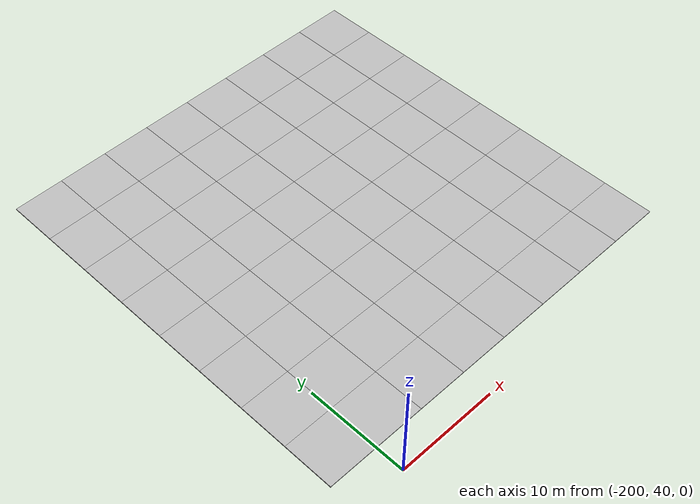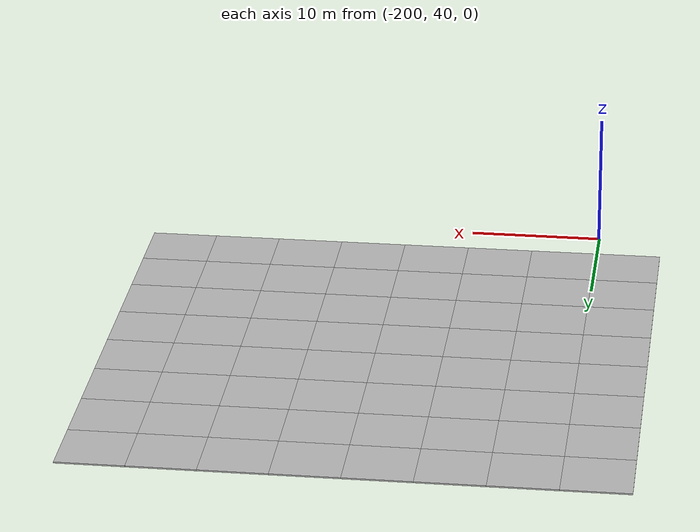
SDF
<sdf version="1.7">
 <world name="default">
  <model name="mud_plane_40x40_24">
   <model name="mud_plane_20x20">
    <model name="mud_plane">
     <static>1</static>
     <link name="link">
      <collision name="collision"><geometry><box><size>10 10 0.1</size></box></geometry></collision>
      <visual name="visual_1">
       <pose>-2.5 2.5 -0.05 0 -0 0</pose>
       <cast_shadows>0</cast_shadows>
       <geometry><box><size>5 5 0.1</size></box></geometry>
       <material>
        <script>
         <uri>model://mud_plane/materials/scripts</uri>
         <uri>model://mud_plane/materials/textures</uri>
         <name>vrc/mud</name>
        </script>
       </material>
      </visual>
      <visual name="visual_2">
       <pose>2.5 2.5 -0.05 0 -0 0</pose>
       <cast_shadows>0</cast_shadows>
       <geometry><box><size>5 5 0.1</size></box></geometry>
       <material>
        <script>
         <uri>model://mud_plane/materials/scripts</uri>
         <uri>model://mud_plane/materials/textures</uri>
         <name>vrc/mud</name>
        </script>
       </material>
      </visual>
      <visual name="visual_3">
       <pose>2.5 -2.5 -0.05 0 -0 0</pose>
       <cast_shadows>0</cast_shadows>
       <geometry><box><size>5 5 0.1</size></box></geometry>
       <material>
        <script>
         <uri>model://mud_plane/materials/scripts</uri>
         <uri>model://mud_plane/materials/textures</uri>
         <name>vrc/mud</name>
        </script>
       </material>
      </visual>
      <visual name="visual_4">
       <pose>-2.5 -2.5 -0.05 0 -0 0</pose>
       <cast_shadows>0</cast_shadows>
       <geometry><box><size>5 5 0.1</size></box></geometry>
       <material>
        <script>
         <uri>model://mud_plane/materials/scripts</uri>
         <uri>model://mud_plane/materials/textures</uri>
         <name>vrc/mud</name>
        </script>
       </material>
      </visual>
     </link>
     <pose>-4.99986 -4.99991 0 0 -0 0</pose>
    </model>
    <model name="mud_plane_0">
     <static>1</static>
     <link name="link">
      <collision name="collision"><geometry><box><size>10 10 0.1</size></box></geometry></collision>
      <visual name="visual_1">
       <pose>-2.5 2.5 -0.05 0 -0 0</pose>
       <cast_shadows>0</cast_shadows>
       <geometry><box><size>5 5 0.1</size></box></geometry>
       <material>
        <script>
         <uri>model://mud_plane/materials/scripts</uri>
         <uri>model://mud_plane/materials/textures</uri>
         <name>vrc/mud</name>
        </script>
       </material>
      </visual>
      <visual name="visual_2">
       <pose>2.5 2.5 -0.05 0 -0 0</pose>
       <cast_shadows>0</cast_shadows>
       <geometry><box><size>5 5 0.1</size></box></geometry>
       <material>
        <script>
         <uri>model://mud_plane/materials/scripts</uri>
         <uri>model://mud_plane/materials/textures</uri>
         <name>vrc/mud</name>
        </script>
       </material>
      </visual>
      <visual name="visual_3">
       <pose>2.5 -2.5 -0.05 0 -0 0</pose>
       <cast_shadows>0</cast_shadows>
       <geometry><box><size>5 5 0.1</size></box></geometry>
       <material>
        <script>
         <uri>model://mud_plane/materials/scripts</uri>
         <uri>model://mud_plane/materials/textures</uri>
         <name>vrc/mud</name>
        </script>
       </material>
      </visual>
      <visual name="visual_4">
       <pose>-2.5 -2.5 -0.05 0 -0 0</pose>
       <cast_shadows>0</cast_shadows>
       <geometry><box><size>5 5 0.1</size></box></geometry>
       <material>
        <script>
         <uri>model://mud_plane/materials/scripts</uri>
         <uri>model://mud_plane/materials/textures</uri>
         <name>vrc/mud</name>
        </script>
       </material>
      </visual>
     </link>
     <pose>-4.99946 4.99954 0 0 -0 0</pose>
    </model>
    <model name="mud_plane_1">
     <static>1</static>
     <link name="link">
      <collision name="collision"><geometry><box><size>10 10 0.1</size></box></geometry></collision>
      <visual name="visual_1">
       <pose>-2.5 2.5 -0.05 0 -0 0</pose>
       <cast_shadows>0</cast_shadows>
       <geometry><box><size>5 5 0.1</size></box></geometry>
       <material>
        <script>
         <uri>model://mud_plane/materials/scripts</uri>
         <uri>model://mud_plane/materials/textures</uri>
         <name>vrc/mud</name>
        </script>
       </material>
      </visual>
      <visual name="visual_2">
       <pose>2.5 2.5 -0.05 0 -0 0</pose>
       <cast_shadows>0</cast_shadows>
       <geometry><box><size>5 5 0.1</size></box></geometry>
       <material>
        <script>
         <uri>model://mud_plane/materials/scripts</uri>
         <uri>model://mud_plane/materials/textures</uri>
         <name>vrc/mud</name>
        </script>
       </material>
      </visual>
      <visual name="visual_3">
       <pose>2.5 -2.5 -0.05 0 -0 0</pose>
       <cast_shadows>0</cast_shadows>
       <geometry><box><size>5 5 0.1</size></box></geometry>
       <material>
        <script>
         <uri>model://mud_plane/materials/scripts</uri>
         <uri>model://mud_plane/materials/textures</uri>
         <name>vrc/mud</name>
        </script>
       </material>
      </visual>
      <visual name="visual_4">
       <pose>-2.5 -2.5 -0.05 0 -0 0</pose>
       <cast_shadows>0</cast_shadows>
       <geometry><box><size>5 5 0.1</size></box></geometry>
       <material>
        <script>
         <uri>model://mud_plane/materials/scripts</uri>
         <uri>model://mud_plane/materials/textures</uri>
         <name>vrc/mud</name>
        </script>
       </material>
      </visual>
     </link>
     <pose>4.99964 -4.99949 0 0 -0 0</pose>
    </model>
    <model name="mud_plane_2">
     <static>1</static>
     <link name="link">
      <collision name="collision"><geometry><box><size>10 10 0.1</size></box></geometry></collision>
      <visual name="visual_1">
       <pose>-2.5 2.5 -0.05 0 -0 0</pose>
       <cast_shadows>0</cast_shadows>
       <geometry><box><size>5 5 0.1</size></box></geometry>
       <material>
        <script>
         <uri>model://mud_plane/materials/scripts</uri>
         <uri>model://mud_plane/materials/textures</uri>
         <name>vrc/mud</name>
        </script>
       </material>
      </visual>
      <visual name="visual_2">
       <pose>2.5 2.5 -0.05 0 -0 0</pose>
       <cast_shadows>0</cast_shadows>
       <geometry><box><size>5 5 0.1</size></box></geometry>
       <material>
        <script>
         <uri>model://mud_plane/materials/scripts</uri>
         <uri>model://mud_plane/materials/textures</uri>
         <name>vrc/mud</name>
        </script>
       </material>
      </visual>
      <visual name="visual_3">
       <pose>2.5 -2.5 -0.05 0 -0 0</pose>
       <cast_shadows>0</cast_shadows>
       <geometry><box><size>5 5 0.1</size></box></geometry>
       <material>
        <script>
         <uri>model://mud_plane/materials/scripts</uri>
         <uri>model://mud_plane/materials/textures</uri>
         <name>vrc/mud</name>
        </script>
       </material>
      </visual>
      <visual name="visual_4">
       <pose>-2.5 -2.5 -0.05 0 -0 0</pose>
       <cast_shadows>0</cast_shadows>
       <geometry><box><size>5 5 0.1</size></box></geometry>
       <material>
        <script>
         <uri>model://mud_plane/materials/scripts</uri>
         <uri>model://mud_plane/materials/textures</uri>
         <name>vrc/mud</name>
        </script>
       </material>
      </visual>
     </link>
     <pose>4.99967 4.99986 0 0 -0 0</pose>
    </model>
    <static>0</static>
    <pose>-9.99895 9.99843 0 0 -0 0</pose>
   </model>
   <model name="mud_plane_20x20_0">
    <model name="mud_plane">
     <static>1</static>
     <link name="link">
      <collision name="collision"><geometry><box><size>10 10 0.1</size></box></geometry></collision>
      <visual name="visual_1">
       <pose>-2.5 2.5 -0.05 0 -0 0</pose>
       <cast_shadows>0</cast_shadows>
       <geometry><box><size>5 5 0.1</size></box></geometry>
       <material>
        <script>
         <uri>model://mud_plane/materials/scripts</uri>
         <uri>model://mud_plane/materials/textures</uri>
         <name>vrc/mud</name>
        </script>
       </material>
      </visual>
      <visual name="visual_2">
       <pose>2.5 2.5 -0.05 0 -0 0</pose>
       <cast_shadows>0</cast_shadows>
       <geometry><box><size>5 5 0.1</size></box></geometry>
       <material>
        <script>
         <uri>model://mud_plane/materials/scripts</uri>
         <uri>model://mud_plane/materials/textures</uri>
         <name>vrc/mud</name>
        </script>
       </material>
      </visual>
      <visual name="visual_3">
       <pose>2.5 -2.5 -0.05 0 -0 0</pose>
       <cast_shadows>0</cast_shadows>
       <geometry><box><size>5 5 0.1</size></box></geometry>
       <material>
        <script>
         <uri>model://mud_plane/materials/scripts</uri>
         <uri>model://mud_plane/materials/textures</uri>
         <name>vrc/mud</name>
        </script>
       </material>
      </visual>
      <visual name="visual_4">
       <pose>-2.5 -2.5 -0.05 0 -0 0</pose>
       <cast_shadows>0</cast_shadows>
       <geometry><box><size>5 5 0.1</size></box></geometry>
       <material>
        <script>
         <uri>model://mud_plane/materials/scripts</uri>
         <uri>model://mud_plane/materials/textures</uri>
         <name>vrc/mud</name>
        </script>
       </material>
      </visual>
     </link>
     <pose>-4.99986 -4.99991 0 0 -0 0</pose>
    </model>
    <model name="mud_plane_0">
     <static>1</static>
     <link name="link">
      <collision name="collision"><geometry><box><size>10 10 0.1</size></box></geometry></collision>
      <visual name="visual_1">
       <pose>-2.5 2.5 -0.05 0 -0 0</pose>
       <cast_shadows>0</cast_shadows>
       <geometry><box><size>5 5 0.1</size></box></geometry>
       <material>
        <script>
         <uri>model://mud_plane/materials/scripts</uri>
         <uri>model://mud_plane/materials/textures</uri>
         <name>vrc/mud</name>
        </script>
       </material>
      </visual>
      <visual name="visual_2">
       <pose>2.5 2.5 -0.05 0 -0 0</pose>
       <cast_shadows>0</cast_shadows>
       <geometry><box><size>5 5 0.1</size></box></geometry>
       <material>
        <script>
         <uri>model://mud_plane/materials/scripts</uri>
         <uri>model://mud_plane/materials/textures</uri>
         <name>vrc/mud</name>
        </script>
       </material>
      </visual>
      <visual name="visual_3">
       <pose>2.5 -2.5 -0.05 0 -0 0</pose>
       <cast_shadows>0</cast_shadows>
       <geometry><box><size>5 5 0.1</size></box></geometry>
       <material>
        <script>
         <uri>model://mud_plane/materials/scripts</uri>
         <uri>model://mud_plane/materials/textures</uri>
         <name>vrc/mud</name>
        </script>
       </material>
      </visual>
      <visual name="visual_4">
       <pose>-2.5 -2.5 -0.05 0 -0 0</pose>
       <cast_shadows>0</cast_shadows>
       <geometry><box><size>5 5 0.1</size></box></geometry>
       <material>
        <script>
         <uri>model://mud_plane/materials/scripts</uri>
         <uri>model://mud_plane/materials/textures</uri>
         <name>vrc/mud</name>
        </script>
       </material>
      </visual>
     </link>
     <pose>-4.99946 4.99954 0 0 -0 0</pose>
    </model>
    <model name="mud_plane_1">
     <static>1</static>
     <link name="link">
      <collision name="collision"><geometry><box><size>10 10 0.1</size></box></geometry></collision>
      <visual name="visual_1">
       <pose>-2.5 2.5 -0.05 0 -0 0</pose>
       <cast_shadows>0</cast_shadows>
       <geometry><box><size>5 5 0.1</size></box></geometry>
       <material>
        <script>
         <uri>model://mud_plane/materials/scripts</uri>
         <uri>model://mud_plane/materials/textures</uri>
         <name>vrc/mud</name>
        </script>
       </material>
      </visual>
      <visual name="visual_2">
       <pose>2.5 2.5 -0.05 0 -0 0</pose>
       <cast_shadows>0</cast_shadows>
       <geometry><box><size>5 5 0.1</size></box></geometry>
       <material>
        <script>
         <uri>model://mud_plane/materials/scripts</uri>
         <uri>model://mud_plane/materials/textures</uri>
         <name>vrc/mud</name>
        </script>
       </material>
      </visual>
      <visual name="visual_3">
       <pose>2.5 -2.5 -0.05 0 -0 0</pose>
       <cast_shadows>0</cast_shadows>
       <geometry><box><size>5 5 0.1</size></box></geometry>
       <material>
        <script>
         <uri>model://mud_plane/materials/scripts</uri>
         <uri>model://mud_plane/materials/textures</uri>
         <name>vrc/mud</name>
        </script>
       </material>
      </visual>
      <visual name="visual_4">
       <pose>-2.5 -2.5 -0.05 0 -0 0</pose>
       <cast_shadows>0</cast_shadows>
       <geometry><box><size>5 5 0.1</size></box></geometry>
       <material>
        <script>
         <uri>model://mud_plane/materials/scripts</uri>
         <uri>model://mud_plane/materials/textures</uri>
         <name>vrc/mud</name>
        </script>
       </material>
      </visual>
     </link>
     <pose>4.99964 -4.99949 0 0 -0 0</pose>
    </model>
    <model name="mud_plane_2">
     <static>1</static>
     <link name="link">
      <collision name="collision"><geometry><box><size>10 10 0.1</size></box></geometry></collision>
      <visual name="visual_1">
       <pose>-2.5 2.5 -0.05 0 -0 0</pose>
       <cast_shadows>0</cast_shadows>
       <geometry><box><size>5 5 0.1</size></box></geometry>
       <material>
        <script>
         <uri>model://mud_plane/materials/scripts</uri>
         <uri>model://mud_plane/materials/textures</uri>
         <name>vrc/mud</name>
        </script>
       </material>
      </visual>
      <visual name="visual_2">
       <pose>2.5 2.5 -0.05 0 -0 0</pose>
       <cast_shadows>0</cast_shadows>
       <geometry><box><size>5 5 0.1</size></box></geometry>
       <material>
        <script>
         <uri>model://mud_plane/materials/scripts</uri>
         <uri>model://mud_plane/materials/textures</uri>
         <name>vrc/mud</name>
        </script>
       </material>
      </visual>
      <visual name="visual_3">
       <pose>2.5 -2.5 -0.05 0 -0 0</pose>
       <cast_shadows>0</cast_shadows>
       <geometry><box><size>5 5 0.1</size></box></geometry>
       <material>
        <script>
         <uri>model://mud_plane/materials/scripts</uri>
         <uri>model://mud_plane/materials/textures</uri>
         <name>vrc/mud</name>
        </script>
       </material>
      </visual>
      <visual name="visual_4">
       <pose>-2.5 -2.5 -0.05 0 -0 0</pose>
       <cast_shadows>0</cast_shadows>
       <geometry><box><size>5 5 0.1</size></box></geometry>
       <material>
        <script>
         <uri>model://mud_plane/materials/scripts</uri>
         <uri>model://mud_plane/materials/textures</uri>
         <name>vrc/mud</name>
        </script>
       </material>
      </visual>
     </link>
     <pose>4.99967 4.99986 0 0 -0 0</pose>
    </model>
    <static>0</static>
    <pose>9.99933 9.9997 0 0 -0 0</pose>
   </model>
   <model name="mud_plane_20x20_1">
    <model name="mud_plane">
     <static>1</static>
     <link name="link">
      <collision name="collision"><geometry><box><size>10 10 0.1</size></box></geometry></collision>
      <visual name="visual_1">
       <pose>-2.5 2.5 -0.05 0 -0 0</pose>
       <cast_shadows>0</cast_shadows>
       <geometry><box><size>5 5 0.1</size></box></geometry>
       <material>
        <script>
         <uri>model://mud_plane/materials/scripts</uri>
         <uri>model://mud_plane/materials/textures</uri>
         <name>vrc/mud</name>
        </script>
       </material>
      </visual>
      <visual name="visual_2">
       <pose>2.5 2.5 -0.05 0 -0 0</pose>
       <cast_shadows>0</cast_shadows>
       <geometry><box><size>5 5 0.1</size></box></geometry>
       <material>
        <script>
         <uri>model://mud_plane/materials/scripts</uri>
         <uri>model://mud_plane/materials/textures</uri>
         <name>vrc/mud</name>
        </script>
       </material>
      </visual>
      <visual name="visual_3">
       <pose>2.5 -2.5 -0.05 0 -0 0</pose>
       <cast_shadows>0</cast_shadows>
       <geometry><box><size>5 5 0.1</size></box></geometry>
       <material>
        <script>
         <uri>model://mud_plane/materials/scripts</uri>
         <uri>model://mud_plane/materials/textures</uri>
         <name>vrc/mud</name>
        </script>
       </material>
      </visual>
      <visual name="visual_4">
       <pose>-2.5 -2.5 -0.05 0 -0 0</pose>
       <cast_shadows>0</cast_shadows>
       <geometry><box><size>5 5 0.1</size></box></geometry>
       <material>
        <script>
         <uri>model://mud_plane/materials/scripts</uri>
         <uri>model://mud_plane/materials/textures</uri>
         <name>vrc/mud</name>
        </script>
       </material>
      </visual>
     </link>
     <pose>-4.99986 -4.99991 0 0 -0 0</pose>
    </model>
    <model name="mud_plane_0">
     <static>1</static>
     <link name="link">
      <collision name="collision"><geometry><box><size>10 10 0.1</size></box></geometry></collision>
      <visual name="visual_1">
       <pose>-2.5 2.5 -0.05 0 -0 0</pose>
       <cast_shadows>0</cast_shadows>
       <geometry><box><size>5 5 0.1</size></box></geometry>
       <material>
        <script>
         <uri>model://mud_plane/materials/scripts</uri>
         <uri>model://mud_plane/materials/textures</uri>
         <name>vrc/mud</name>
        </script>
       </material>
      </visual>
      <visual name="visual_2">
       <pose>2.5 2.5 -0.05 0 -0 0</pose>
       <cast_shadows>0</cast_shadows>
       <geometry><box><size>5 5 0.1</size></box></geometry>
       <material>
        <script>
         <uri>model://mud_plane/materials/scripts</uri>
         <uri>model://mud_plane/materials/textures</uri>
         <name>vrc/mud</name>
        </script>
       </material>
      </visual>
      <visual name="visual_3">
       <pose>2.5 -2.5 -0.05 0 -0 0</pose>
       <cast_shadows>0</cast_shadows>
       <geometry><box><size>5 5 0.1</size></box></geometry>
       <material>
        <script>
         <uri>model://mud_plane/materials/scripts</uri>
         <uri>model://mud_plane/materials/textures</uri>
         <name>vrc/mud</name>
        </script>
       </material>
      </visual>
      <visual name="visual_4">
       <pose>-2.5 -2.5 -0.05 0 -0 0</pose>
       <cast_shadows>0</cast_shadows>
       <geometry><box><size>5 5 0.1</size></box></geometry>
       <material>
        <script>
         <uri>model://mud_plane/materials/scripts</uri>
         <uri>model://mud_plane/materials/textures</uri>
         <name>vrc/mud</name>
        </script>
       </material>
      </visual>
     </link>
     <pose>-4.99946 4.99954 0 0 -0 0</pose>
    </model>
    <model name="mud_plane_1">
     <static>1</static>
     <link name="link">
      <collision name="collision"><geometry><box><size>10 10 0.1</size></box></geometry></collision>
      <visual name="visual_1">
       <pose>-2.5 2.5 -0.05 0 -0 0</pose>
       <cast_shadows>0</cast_shadows>
       <geometry><box><size>5 5 0.1</size></box></geometry>
       <material>
        <script>
         <uri>model://mud_plane/materials/scripts</uri>
         <uri>model://mud_plane/materials/textures</uri>
         <name>vrc/mud</name>
        </script>
       </material>
      </visual>
      <visual name="visual_2">
       <pose>2.5 2.5 -0.05 0 -0 0</pose>
       <cast_shadows>0</cast_shadows>
       <geometry><box><size>5 5 0.1</size></box></geometry>
       <material>
        <script>
         <uri>model://mud_plane/materials/scripts</uri>
         <uri>model://mud_plane/materials/textures</uri>
         <name>vrc/mud</name>
        </script>
       </material>
      </visual>
      <visual name="visual_3">
       <pose>2.5 -2.5 -0.05 0 -0 0</pose>
       <cast_shadows>0</cast_shadows>
       <geometry><box><size>5 5 0.1</size></box></geometry>
       <material>
        <script>
         <uri>model://mud_plane/materials/scripts</uri>
         <uri>model://mud_plane/materials/textures</uri>
         <name>vrc/mud</name>
        </script>
       </material>
      </visual>
      <visual name="visual_4">
       <pose>-2.5 -2.5 -0.05 0 -0 0</pose>
       <cast_shadows>0</cast_shadows>
       <geometry><box><size>5 5 0.1</size></box></geometry>
       <material>
        <script>
         <uri>model://mud_plane/materials/scripts</uri>
         <uri>model://mud_plane/materials/textures</uri>
         <name>vrc/mud</name>
        </script>
       </material>
      </visual>
     </link>
     <pose>4.99964 -4.99949 0 0 -0 0</pose>
    </model>
    <model name="mud_plane_2">
     <static>1</static>
     <link name="link">
      <collision name="collision"><geometry><box><size>10 10 0.1</size></box></geometry></collision>
      <visual name="visual_1">
       <pose>-2.5 2.5 -0.05 0 -0 0</pose>
       <cast_shadows>0</cast_shadows>
       <geometry><box><size>5 5 0.1</size></box></geometry>
       <material>
        <script>
         <uri>model://mud_plane/materials/scripts</uri>
         <uri>model://mud_plane/materials/textures</uri>
         <name>vrc/mud</name>
        </script>
       </material>
      </visual>
      <visual name="visual_2">
       <pose>2.5 2.5 -0.05 0 -0 0</pose>
       <cast_shadows>0</cast_shadows>
       <geometry><box><size>5 5 0.1</size></box></geometry>
       <material>
        <script>
         <uri>model://mud_plane/materials/scripts</uri>
         <uri>model://mud_plane/materials/textures</uri>
         <name>vrc/mud</name>
        </script>
       </material>
      </visual>
      <visual name="visual_3">
       <pose>2.5 -2.5 -0.05 0 -0 0</pose>
       <cast_shadows>0</cast_shadows>
       <geometry><box><size>5 5 0.1</size></box></geometry>
       <material>
        <script>
         <uri>model://mud_plane/materials/scripts</uri>
         <uri>model://mud_plane/materials/textures</uri>
         <name>vrc/mud</name>
        </script>
       </material>
      </visual>
      <visual name="visual_4">
       <pose>-2.5 -2.5 -0.05 0 -0 0</pose>
       <cast_shadows>0</cast_shadows>
       <geometry><box><size>5 5 0.1</size></box></geometry>
       <material>
        <script>
         <uri>model://mud_plane/materials/scripts</uri>
         <uri>model://mud_plane/materials/textures</uri>
         <name>vrc/mud</name>
        </script>
       </material>
      </visual>
     </link>
     <pose>4.99967 4.99986 0 0 -0 0</pose>
    </model>
    <static>0</static>
    <pose>9.9993 -9.99877 0 0 -0 0</pose>
   </model>
   <model name="mud_plane_20x20_2">
    <model name="mud_plane">
     <static>1</static>
     <link name="link">
      <collision name="collision"><geometry><box><size>10 10 0.1</size></box></geometry></collision>
      <visual name="visual_1">
       <pose>-2.5 2.5 -0.05 0 -0 0</pose>
       <cast_shadows>0</cast_shadows>
       <geometry><box><size>5 5 0.1</size></box></geometry>
       <material>
        <script>
         <uri>model://mud_plane/materials/scripts</uri>
         <uri>model://mud_plane/materials/textures</uri>
         <name>vrc/mud</name>
        </script>
       </material>
      </visual>
      <visual name="visual_2">
       <pose>2.5 2.5 -0.05 0 -0 0</pose>
       <cast_shadows>0</cast_shadows>
       <geometry><box><size>5 5 0.1</size></box></geometry>
       <material>
        <script>
         <uri>model://mud_plane/materials/scripts</uri>
         <uri>model://mud_plane/materials/textures</uri>
         <name>vrc/mud</name>
        </script>
       </material>
      </visual>
      <visual name="visual_3">
       <pose>2.5 -2.5 -0.05 0 -0 0</pose>
       <cast_shadows>0</cast_shadows>
       <geometry><box><size>5 5 0.1</size></box></geometry>
       <material>
        <script>
         <uri>model://mud_plane/materials/scripts</uri>
         <uri>model://mud_plane/materials/textures</uri>
         <name>vrc/mud</name>
        </script>
       </material>
      </visual>
      <visual name="visual_4">
       <pose>-2.5 -2.5 -0.05 0 -0 0</pose>
       <cast_shadows>0</cast_shadows>
       <geometry><box><size>5 5 0.1</size></box></geometry>
       <material>
        <script>
         <uri>model://mud_plane/materials/scripts</uri>
         <uri>model://mud_plane/materials/textures</uri>
         <name>vrc/mud</name>
        </script>
       </material>
      </visual>
     </link>
     <pose>-4.99986 -4.99991 0 0 -0 0</pose>
    </model>
    <model name="mud_plane_0">
     <static>1</static>
     <link name="link">
      <collision name="collision"><geometry><box><size>10 10 0.1</size></box></geometry></collision>
      <visual name="visual_1">
       <pose>-2.5 2.5 -0.05 0 -0 0</pose>
       <cast_shadows>0</cast_shadows>
       <geometry><box><size>5 5 0.1</size></box></geometry>
       <material>
        <script>
         <uri>model://mud_plane/materials/scripts</uri>
         <uri>model://mud_plane/materials/textures</uri>
         <name>vrc/mud</name>
        </script>
       </material>
      </visual>
      <visual name="visual_2">
       <pose>2.5 2.5 -0.05 0 -0 0</pose>
       <cast_shadows>0</cast_shadows>
       <geometry><box><size>5 5 0.1</size></box></geometry>
       <material>
        <script>
         <uri>model://mud_plane/materials/scripts</uri>
         <uri>model://mud_plane/materials/textures</uri>
         <name>vrc/mud</name>
        </script>
       </material>
      </visual>
      <visual name="visual_3">
       <pose>2.5 -2.5 -0.05 0 -0 0</pose>
       <cast_shadows>0</cast_shadows>
       <geometry><box><size>5 5 0.1</size></box></geometry>
       <material>
        <script>
         <uri>model://mud_plane/materials/scripts</uri>
         <uri>model://mud_plane/materials/textures</uri>
         <name>vrc/mud</name>
        </script>
       </material>
      </visual>
      <visual name="visual_4">
       <pose>-2.5 -2.5 -0.05 0 -0 0</pose>
       <cast_shadows>0</cast_shadows>
       <geometry><box><size>5 5 0.1</size></box></geometry>
       <material>
        <script>
         <uri>model://mud_plane/materials/scripts</uri>
         <uri>model://mud_plane/materials/textures</uri>
         <name>vrc/mud</name>
        </script>
       </material>
      </visual>
     </link>
     <pose>-4.99946 4.99954 0 0 -0 0</pose>
    </model>
    <model name="mud_plane_1">
     <static>1</static>
     <link name="link">
      <collision name="collision"><geometry><box><size>10 10 0.1</size></box></geometry></collision>
      <visual name="visual_1">
       <pose>-2.5 2.5 -0.05 0 -0 0</pose>
       <cast_shadows>0</cast_shadows>
       <geometry><box><size>5 5 0.1</size></box></geometry>
       <material>
        <script>
         <uri>model://mud_plane/materials/scripts</uri>
         <uri>model://mud_plane/materials/textures</uri>
         <name>vrc/mud</name>
        </script>
       </material>
      </visual>
      <visual name="visual_2">
       <pose>2.5 2.5 -0.05 0 -0 0</pose>
       <cast_shadows>0</cast_shadows>
       <geometry><box><size>5 5 0.1</size></box></geometry>
       <material>
        <script>
         <uri>model://mud_plane/materials/scripts</uri>
         <uri>model://mud_plane/materials/textures</uri>
         <name>vrc/mud</name>
        </script>
       </material>
      </visual>
      <visual name="visual_3">
       <pose>2.5 -2.5 -0.05 0 -0 0</pose>
       <cast_shadows>0</cast_shadows>
       <geometry><box><size>5 5 0.1</size></box></geometry>
       <material>
        <script>
         <uri>model://mud_plane/materials/scripts</uri>
         <uri>model://mud_plane/materials/textures</uri>
         <name>vrc/mud</name>
        </script>
       </material>
      </visual>
      <visual name="visual_4">
       <pose>-2.5 -2.5 -0.05 0 -0 0</pose>
       <cast_shadows>0</cast_shadows>
       <geometry><box><size>5 5 0.1</size></box></geometry>
       <material>
        <script>
         <uri>model://mud_plane/materials/scripts</uri>
         <uri>model://mud_plane/materials/textures</uri>
         <name>vrc/mud</name>
        </script>
       </material>
      </visual>
     </link>
     <pose>4.99964 -4.99949 0 0 -0 0</pose>
    </model>
    <model name="mud_plane_2">
     <static>1</static>
     <link name="link">
      <collision name="collision"><geometry><box><size>10 10 0.1</size></box></geometry></collision>
      <visual name="visual_1">
       <pose>-2.5 2.5 -0.05 0 -0 0</pose>
       <cast_shadows>0</cast_shadows>
       <geometry><box><size>5 5 0.1</size></box></geometry>
       <material>
        <script>
         <uri>model://mud_plane/materials/scripts</uri>
         <uri>model://mud_plane/materials/textures</uri>
         <name>vrc/mud</name>
        </script>
       </material>
      </visual>
      <visual name="visual_2">
       <pose>2.5 2.5 -0.05 0 -0 0</pose>
       <cast_shadows>0</cast_shadows>
       <geometry><box><size>5 5 0.1</size></box></geometry>
       <material>
        <script>
         <uri>model://mud_plane/materials/scripts</uri>
         <uri>model://mud_plane/materials/textures</uri>
         <name>vrc/mud</name>
        </script>
       </material>
      </visual>
      <visual name="visual_3">
       <pose>2.5 -2.5 -0.05 0 -0 0</pose>
       <cast_shadows>0</cast_shadows>
       <geometry><box><size>5 5 0.1</size></box></geometry>
       <material>
        <script>
         <uri>model://mud_plane/materials/scripts</uri>
         <uri>model://mud_plane/materials/textures</uri>
         <name>vrc/mud</name>
        </script>
       </material>
      </visual>
      <visual name="visual_4">
       <pose>-2.5 -2.5 -0.05 0 -0 0</pose>
       <cast_shadows>0</cast_shadows>
       <geometry><box><size>5 5 0.1</size></box></geometry>
       <material>
        <script>
         <uri>model://mud_plane/materials/scripts</uri>
         <uri>model://mud_plane/materials/textures</uri>
         <name>vrc/mud</name>
        </script>
       </material>
      </visual>
     </link>
     <pose>4.99967 4.99986 0 0 -0 0</pose>
    </model>
    <static>0</static>
    <pose>-9.99969 -9.99935 0 0 -0 0</pose>
   </model>
   <static>0</static>
   <pose>-184.923 62.8695 0 0 -0 0</pose>
  </model>
 </world>
</sdf>
